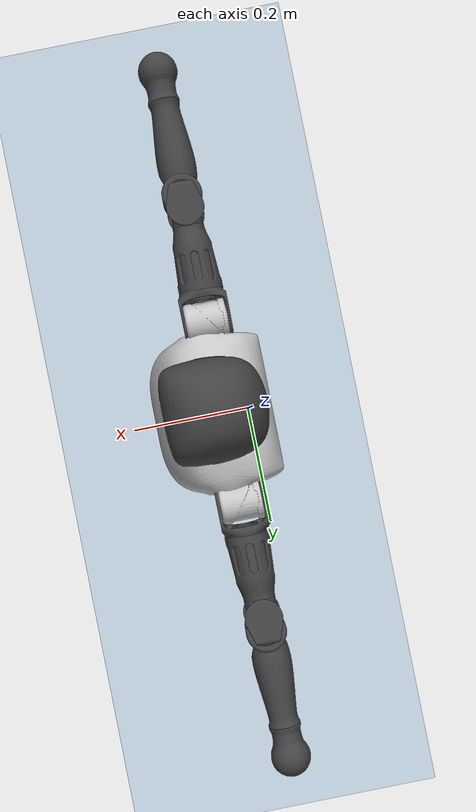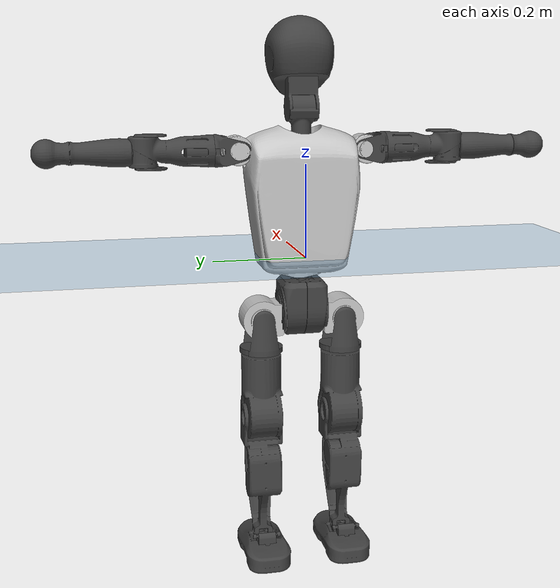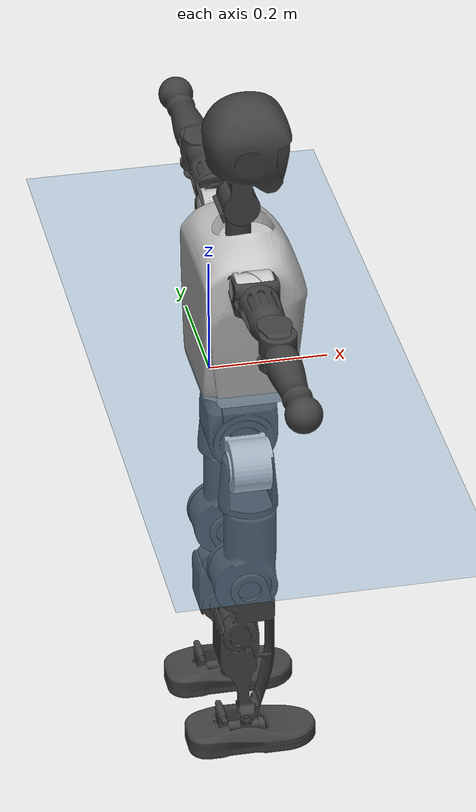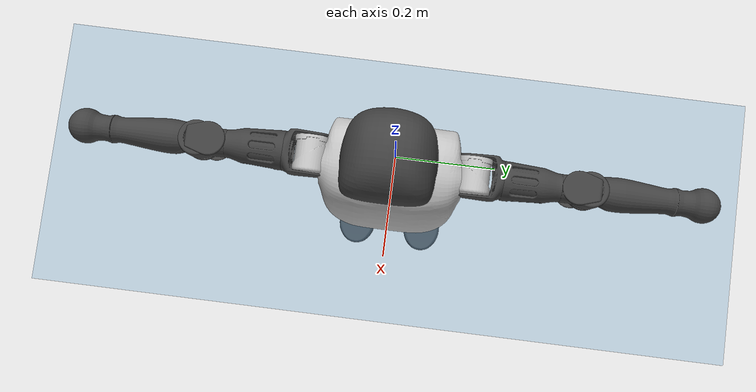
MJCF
<mujoco model="T1">
  <compiler angle="radian" assetdir="assets" balanceinertia="true" inertiafromgeom="false"/>

  <option timestep="0.005" density="1.2" viscosity="2e-05"/>

  <size nkey="1"/>

  <visual>
    <quality shadowsize="8192"/>
    <map shadowclip="0.5"/>
  </visual>

  <default>
    <default class="/">
      <joint armature="0.01" damping="0.01" frictionloss="0.1"/>
      <geom contype="0" conaffinity="0" group="1" solref="-1000 -80"/>
      <site size="0.01 0.005 0.005" group="5"/>
      <general forcelimited="true" biastype="affine" gainprm="25" biasprm="0 -25 -0.6"/>
      <default class="t1">
        <geom rgba="0.25 0.25 0.25 1"/>
        <default class="visual">
          <geom type="mesh" group="2"/>
        </default>
        <default class="collision">
          <geom group="3"/>
        </default>
        <default class="foot">
          <geom size="0.1115 0.05 0.015" type="box" condim="6" group="4" priority="1" solimp="0.015 1 0.015"/>
        </default>
        <default class="reward_collision_sphere">
          <geom group="5" rgba="1 0 0 1"/>
        </default>
      </default>
    </default>
  </default>

  <asset>
    <texture type="skybox" colorspace="auto" name="//unnamed_texture_0" builtin="gradient" rgb1="0.95 0.95 0.95" rgb2="0.95 0.95 0.95" width="100" height="600"/>
    <texture type="2d" colorspace="auto" name="texplane" builtin="checker" rgb1="0.345 0.575 0.748" rgb2="0.345 0.575 0.748" markrgb="1 1 1" width="512" height="512"/>
    <material name="MatPlane" class="/" texture="texplane" texuniform="true" texrepeat="2 2" specular="0.9"/>
    <mesh name="Trunk" class="/" file="Trunk.stl"/>
    <mesh name="H1" class="/" file="H1.stl"/>
    <mesh name="H2" class="/" file="H2.stl"/>
    <mesh name="AL1" class="/" file="AL1.stl"/>
    <mesh name="AL2" class="/" file="AL2.stl"/>
    <mesh name="AL3" class="/" file="AL3.stl"/>
    <mesh name="left_hand_link" class="/" file="left_hand_link.stl"/>
    <mesh name="AR1" class="/" file="AR1.stl"/>
    <mesh name="AR2" class="/" file="AR2.stl"/>
    <mesh name="AR3" class="/" file="AR3.stl"/>
    <mesh name="right_hand_link" class="/" file="right_hand_link.stl"/>
    <mesh name="Waist" class="/" file="Waist.stl"/>
    <mesh name="Hip_Pitch_Left" class="/" file="Hip_Pitch_Left.stl"/>
    <mesh name="Hip_Roll_Left" class="/" file="Hip_Roll_Left.stl"/>
    <mesh name="Hip_Yaw_Left" class="/" file="Hip_Yaw_Left.stl"/>
    <mesh name="Shank_Left" class="/" file="Shank_Left.stl"/>
    <mesh name="Ankle_Cross_Left" class="/" file="Ankle_Cross_Left.stl"/>
    <mesh name="left_foot_link" class="/" file="left_foot_link.stl"/>
    <mesh name="Hip_Pitch_Right" class="/" file="Hip_Pitch_Right.stl"/>
    <mesh name="Hip_Roll_Right" class="/" file="Hip_Roll_Right.stl"/>
    <mesh name="Hip_Yaw_Right" class="/" file="Hip_Yaw_Right.stl"/>
    <mesh name="Shank_Right" class="/" file="Shank_Right.stl"/>
    <mesh name="Ankle_Cross_Right" class="/" file="Ankle_Cross_Right.stl"/>
    <mesh name="right_foot_link" class="/" file="right_foot_link.stl"/>
  </asset>

  <worldbody>
    <geom name="floor" class="/" size="100 100 0.125" type="plane" group="0" material="MatPlane"/>
    <light name="toplight_shadow" class="/" pos="0 0 5" dir="0.0990148 0.0990148 -0.990148" type="directional" ambient="0.04 0.04 0.04" diffuse="0.55 0.55 0.55" specular="0.12 0.12 0.12"/>
    <light name="toplight_fill" class="/" pos="0 0 5" dir="0.0990148 0.0990148 -0.990148" type="directional" castshadow="false" ambient="0.04 0.04 0.04" diffuse="0.3 0.3 0.3" specular="0.08 0.08 0.08"/>
    <body name="trunk" childclass="t1" pos="0.0010016 -0.000595631 -0.000760649" quat="1 -4.36602e-05 0.000283851 -6.66623e-05">
      <inertial pos="0.0426617 0.000401135 0.108888" quat="0.99997 9.71065e-05 -0.00778375 -0.000448022" mass="8.16595" diaginertia="0.0267847 0.0361313 0.0682736"/>
      <joint name="//unnamed_joint_0" type="free" armature="0" damping="0" frictionloss="0"/>
      <geom name="//unnamed_geom_1" class="visual" rgba="0.76 0.76 0.76 1" mesh="Trunk"/>
      <geom name="//unnamed_geom_2" class="collision" size="0.067173 0.0895641 0.134346" pos="0.0470039 0 0.125368" type="box"/>
      <geom name="//unnamed_geom_3" class="reward_collision_sphere" size="0.102999" pos="0.0470039 0 0.104474"/>
      <geom name="//unnamed_geom_4" class="reward_collision_sphere" size="0.0134346" pos="0.0470039 0.0729969 0"/>
      <geom name="//unnamed_geom_5" class="reward_collision_sphere" size="0.0134346" pos="0.0470039 -0.0729969 0"/>
      <geom name="//unnamed_geom_6" class="reward_collision_sphere" size="0.0134346" pos="0.0470039 0.0918903 0.188052"/>
      <geom name="//unnamed_geom_7" class="reward_collision_sphere" size="0.0134346" pos="0.0470039 -0.0918903 0.188052"/>
      <site name="imu" pos="0.0017817 -0.00624783 -0.000284552" size="0.00895641"/>
      <camera name="track" pos="0 -1.71758 0" quat="0.707107 0.707107 0 0" mode="trackcom"/>
      <camera name="ego_camera" pos="0.0955747 0 0.438789" quat="-0.5 -0.5 0.5 0.5"/>
      <body name="H1" pos="0.047985 -0.000677565 0.253023" quat="1 -0.00037762 1.87918e-05 0.000222547">
        <inertial pos="-0.00203117 -0.00147798 0.0594413" quat="0.762457 -0.0231882 0.000846878 0.646622" mass="0.316695" diaginertia="7.1289e-05 0.000104083 0.000187438"/>
        <joint name="AAHead_yaw" pos="0 0 0" axis="-0.00259432 0.00579973 0.99998" stiffness="0.00246988" range="-1.56455 1.57689" armature="0.0086515" damping="0.00847119" frictionloss="0.0893916"/>
        <geom name="//unnamed_geom_8" class="visual" mesh="H1"/>
        <body name="H2" pos="0.000129433 -0.000436811 0.0638942" quat="1 -0.000203332 0.00017649 -0.000123914">
          <inertial pos="0.00560124 -0.00111528 0.102946" quat="0.988458 0.106166 -0.0745503 -0.0782473" mass="0.451371" diaginertia="0.000598536 0.000871578 0.00214261"/>
          <joint name="Head_pitch" pos="0 0 0" axis="0.0026489 -0.999995 -0.00144072" range="-1.22726 0.334003" armature="0.00900412" damping="0.00431443" frictionloss="0.0939757"/>
          <geom name="//unnamed_geom_9" class="visual" mesh="H2"/>
          <geom name="//unnamed_geom_10" class="collision" size="0.0716512" pos="0.00783399 0 0.114921"/>
          <geom name="//unnamed_geom_11" class="reward_collision_sphere" size="0.0806077" pos="0.015668 0 0.104474"/>
        </body>
      </body>
      <body name="AL1" pos="0.0469277 0.0925791 0.228969" quat="1 -7.23378e-05 0.000294675 -0.00021343">
        <inertial pos="-0.000203091 0.0379283 -0.00184526" quat="0.502411 0.498953 -0.508213 0.490254" mass="0.391593" diaginertia="0.000415503 0.000616955 0.00037305"/>
        <joint name="Left_Shoulder_Pitch" pos="0 0 0" axis="0.00689592 0.999973 0.00267626" range="-3.30494 1.2399" armature="0.00917417" damping="0.00577754" frictionloss="0.0916067"/>
        <geom name="//unnamed_geom_12" class="visual" rgba="0.76 0.76 0.76 1" mesh="AL1"/>
        <body name="AL2" pos="0.000118048 0.0407827 -0.000468783" quat="0.999999 0.000951629 0.000291094 -0.000121042">
          <inertial pos="0.00351779 0.0304258 -0.000436014" quat="0.487996 0.511851 -0.487922 0.511664" mass="0.114278" diaginertia="0.000119033 0.000162759 0.000218467"/>
          <joint name="Left_Shoulder_Roll" pos="0 0 0" axis="-0.999969 -0.00385099 -0.00681137" range="-1.54485 1.75154" armature="0.00943121" damping="0" frictionloss="0.0954404"/>
          <geom name="//unnamed_geom_13" class="visual" mesh="AL2"/>
          <body name="AL3" pos="0.00102851 0.0543718 -0.000226393" quat="1 0.00024297 -0.000589347 -0.000170104">
            <inertial pos="-0.00058645 0.0724396 0.000777242" quat="0.706831 0.707376 -0.00146467 0.00284541" mass="0.760043" diaginertia="0.00382086 0.00611295 0.000761996"/>
            <joint name="Left_Elbow_Pitch" pos="0 0 0" axis="-0.00022617 -0.999997 0.00235422" range="-2.23158 2.23193" armature="0.00963832" damping="0" frictionloss="0.0909514"/>
            <geom name="//unnamed_geom_14" class="visual" mesh="AL3"/>
            <geom name="//unnamed_geom_15" class="collision" size="0.0268692 0.067173" pos="0 0.0429394 0" quat="0.707105 0.707108 0 0" type="cylinder"/>
            <geom name="//unnamed_geom_16" class="reward_collision_sphere" size="0.0322431"/>
            <body name="left_hand_link" pos="-0.000178405 0.126327 -0.000763242" quat="1 -7.07479e-06 -4.26841e-05 -0.000106129">
              <inertial pos="1.40125e-05 0.0936799 -0.000173337" quat="0.706296 0.707916 -0.000613576 0.000835468" mass="0.23338" diaginertia="0.00238297 0.00378778 0.00026719"/>
              <joint name="Left_Elbow_Yaw" pos="0 0 0" axis="0.00131911 0.000604388 0.999999" range="-2.44615 -0.00487303" armature="0.00932603" damping="0.0108228" frictionloss="0.0868949"/>
              <geom name="//unnamed_geom_17" class="visual" mesh="left_hand_link"/>
              <geom name="//unnamed_geom_18" class="collision" size="0.0268692 0.0783686" pos="0 0.111642 0" quat="0.707105 0.707108 0 0" type="cylinder"/>
              <geom name="//unnamed_geom_19" class="reward_collision_sphere" size="0.044782"/>
              <geom name="//unnamed_geom_20" class="reward_collision_sphere" size="0.0313474" pos="0 0.0944666 0"/>
              <geom name="//unnamed_geom_21" class="reward_collision_sphere" size="0.0313474" pos="0 0.184639 0"/>
            </body>
          </body>
        </body>
      </body>
      <body name="AR1" pos="0.0445317 -0.091873 0.228504" quat="1 -0.00020678 0.000542906 -4.62573e-05">
        <inertial pos="-0.00111969 -0.0401984 0.0013593" quat="0.504008 0.495459 -0.504435 0.496026" mass="0.380221" diaginertia="0.000400283 0.000599266 0.000365005"/>
        <joint name="Right_Shoulder_Pitch" pos="0 0 0" axis="-0.000183944 -1 -4.4223e-05" range="-1.21308 3.30904" armature="0.00921269" damping="0.00199904" frictionloss="0.0889325"/>
        <geom name="//unnamed_geom_22" class="visual" rgba="0.76 0.76 0.76 1" mesh="AR1"/>
        <body name="AR2" pos="-0.000824958 -0.0387604 0.000667124" quat="1 -6.34741e-05 -9.86258e-06 -1.77017e-05">
          <inertial pos="0.00260542 -0.0325536 -0.00122407" quat="0.510419 0.489967 -0.513105 0.48593" mass="0.112887" diaginertia="0.000117517 0.00015675 0.000215358"/>
          <joint name="Right_Shoulder_Roll" pos="0 0 0" axis="-0.999968 0.000350963 -0.00801016" stiffness="0.00627118" range="-1.72622 1.59606" armature="0.00901858" damping="0.000888027" frictionloss="0.0895932"/>
          <geom name="//unnamed_geom_23" class="visual" mesh="AR2"/>
          <body name="AR3" pos="-0.00032745 -0.0527903 0.000661853" quat="1 -3.89502e-05 0.000215492 0.000131886">
            <inertial pos="-0.00137637 -0.0726298 -0.000332599" quat="0.707839 0.706373 -0.000229852 -0.000124265" mass="0.727637" diaginertia="0.00374571 0.00591337 0.000757095"/>
            <joint name="Right_Elbow_Pitch" pos="0 0 0" axis="0.00523272 0.999986 0.00121342" range="-2.2771 2.2679" armature="0.00962881" damping="0.0086069" frictionloss="0.0833329"/>
            <geom name="//unnamed_geom_24" class="visual" mesh="AR3"/>
            <geom name="//unnamed_geom_25" class="collision" size="0.0268692 0.067173" pos="0 -0.0429394 0" quat="0.707105 0.707108 0 0" type="cylinder"/>
            <geom name="//unnamed_geom_26" class="reward_collision_sphere" size="0.0322431"/>
            <body name="right_hand_link" pos="-0.000854193 -0.125732 -0.000410519" quat="1 8.7961e-06 -3.76796e-05 1.31261e-05">
              <inertial pos="-0.000264098 -0.0943396 -0.00103196" quat="0.703609 0.710537 0.00165072 0.00827578" mass="0.241849" diaginertia="0.00236883 0.00380139 0.000266096"/>
              <joint name="Right_Elbow_Yaw" pos="0 0 0" axis="0.000707493 -0.00377569 0.999993" range="-0.0295443 2.47525" armature="0.00882948" damping="0.0120481" frictionloss="0.086598"/>
              <geom name="//unnamed_geom_27" class="visual" mesh="right_hand_link"/>
              <geom name="//unnamed_geom_28" class="collision" size="0.0268692 0.0783686" pos="0 -0.111642 0" quat="0.707105 0.707108 0 0" type="cylinder"/>
              <geom name="//unnamed_geom_29" class="reward_collision_sphere" size="0.044782"/>
              <geom name="//unnamed_geom_30" class="reward_collision_sphere" size="0.0313474" pos="0 -0.0944666 0"/>
              <geom name="//unnamed_geom_31" class="reward_collision_sphere" size="0.0313474" pos="0 -0.184639 0"/>
            </body>
          </body>
        </body>
      </body>
      <body name="Waist" pos="0.0481381 -0.00120464 -0.120127" quat="1 0.000190536 -0.000387228 4.88988e-06">
        <inertial pos="0.0010066 -0.00101823 0.00695161" quat="0.983514 0.00388124 -0.180744 0.00416585" mass="1.86325" diaginertia="0.0015713 0.00245948 0.00589089"/>
        <joint name="Waist" pos="0 0 0" axis="-0.00442632 -0.0040175 0.999982" range="-1.57242 1.56254" armature="0.00848963" damping="0.0175573" frictionloss="0.0855852"/>
        <geom name="//unnamed_geom_32" class="visual" mesh="Waist"/>
        <body name="Hip_Pitch_Left" pos="0.000362879 0.0920366 0.00105507" quat="1 0.000281625 2.86611e-05 -9.79404e-05">
          <inertial pos="0.00260276 -0.00743228 -0.0204592" quat="0.975457 0.219366 0.0157489 0.0106677" mass="0.732331" diaginertia="0.000533935 0.000678778 0.00153967"/>
          <joint name="Left_Hip_Pitch" pos="0 0 0" axis="-0.000150315 0.999994 0.00357877" range="-1.80146 1.59861" armature="0.00872199" damping="0.00103789" frictionloss="0.0888061"/>
          <geom name="//unnamed_geom_33" class="visual" rgba="0.76 0.76 0.76 1" mesh="Hip_Pitch_Left"/>
          <body name="Hip_Roll_Left" pos="0.00104983 -0.000851176 -0.0199054" quat="1 0.000165348 7.03215e-06 -2.5936e-05">
            <inertial pos="0.00138568 0.000779516 -0.0559016" quat="0.707006 -0.00606788 -0.00625589 0.707154" mass="0.266347" diaginertia="0.000511854 0.000685287 0.000624045"/>
            <joint name="Left_Hip_Roll" pos="0 0 0" axis="-0.999979 0.00370184 -0.00522671" range="-1.56071 0.182507" armature="0.00907759" damping="0.00971633" frictionloss="0.0893597"/>
            <geom name="//unnamed_geom_34" class="visual" mesh="Hip_Roll_Left"/>
            <geom name="//unnamed_geom_35" class="reward_collision_sphere" size="0.0492602"/>
            <body name="Hip_Yaw_Left" pos="0.00160552 3.59551e-05 -0.0857933" quat="1 -4.33889e-05 -5.90074e-05 -1.09766e-05">
              <inertial pos="-0.00545335 -0.00037935 -0.0938496" quat="0.693326 -0.0351191 -0.0386187 0.718731" mass="1.56233" diaginertia="0.00768713 0.0119856 0.00330057"/>
              <joint name="Left_Hip_Yaw" pos="0 0 0" axis="0.0024637 0.00375692 -0.99999" range="-1.02476 0.997742" armature="0.00879006" damping="0.004457" frictionloss="0.0880767"/>
              <geom name="//unnamed_geom_36" class="visual" mesh="Hip_Yaw_Left"/>
              <geom name="//unnamed_geom_37" class="collision" size="0.044782 0.0716512" type="cylinder"/>
              <body name="Shank_Left" pos="-0.0102517 0.00124531 -0.141652" quat="1 0.00019774 -0.000180388 0.00014899">
                <inertial pos="-0.00490929 -0.00131057 -0.130022" quat="0.997617 0.00234052 -0.0257031 0.0639909" mass="1.23966" diaginertia="0.0104641 0.0161443 0.00236269"/>
                <joint name="Left_Knee_Pitch" pos="0 0 0" axis="-5.61901e-05 1 -0.00055621" range="-0.0175698 2.33676" armature="0.00857776" damping="0.00559422" frictionloss="0.0994737"/>
                <geom name="//unnamed_geom_38" class="visual" mesh="Shank_Left"/>
                <geom name="//unnamed_geom_39" class="collision" size="0.044782 0.067173" pos="0 0 -0.125368" type="cylinder"/>
                <geom name="//unnamed_geom_40" class="reward_collision_sphere" size="0.0582166"/>
                <body name="Ankle_Cross_Left" pos="-0.00124121 -0.00073367 -0.292788" quat="1 -1.92582e-05 2.95118e-05 -7.3802e-06">
                  <inertial pos="-0.00290302 -0.000112368 -0.00895778" quat="0.442594 0.551523 0.550907 0.443208" mass="0.0510928" diaginertia="8.3799e-06 1.13866e-05 1.36514e-05"/>
                  <joint name="Left_Ankle_Pitch" pos="0 0 0" axis="-0.0045114 0.999947 -0.00922765" range="-0.850349 0.358538" armature="0.00887328" damping="0.0103909" frictionloss="0.0936419"/>
                  <geom name="//unnamed_geom_41" class="visual" mesh="Ankle_Cross_Left"/>
                  <body name="left_foot_link" pos="-0.00108741 -0.000692565 -0.012523" quat="0.999999 -0.000167013 0.000721202 -0.000686035">
                    <inertial pos="0.00129838 -0.000222214 -0.00849713" quat="-0.000366426 0.61883 -0.00234811 0.785521" mass="0.483482" diaginertia="0.0007878 0.00110244 0.00267671"/>
                    <joint name="Left_Ankle_Roll" pos="0 0 0" axis="-0.999998 -0.00116408 -0.00142377" stiffness="0.000819825" range="-0.437134 0.45463" armature="0.00900828" damping="0.00530841" frictionloss="0.0851728"/>
                    <geom name="//unnamed_geom_42" class="visual" mesh="left_foot_link"/>
                    <geom name="left_foot" class="foot" size="0.104036 0.0439703 0.0126189" pos="0.00783399 0 -0.015671"/>
                    <geom name="//unnamed_geom_44" class="reward_collision_sphere" size="0.0465733" pos="0.00783399 0 -0.015671"/>
                    <geom name="//unnamed_geom_45" class="reward_collision_sphere" size="0.0268692" pos="0.0744229 -0.0197521 -0.015671"/>
                    <geom name="//unnamed_geom_46" class="reward_collision_sphere" size="0.0268692" pos="-0.0548379 -0.0197521 -0.015671"/>
                    <site name="left_foot" class="foot" pos="0.00783399 0 -0.015671" size="0.00895641"/>
                  </body>
                </body>
              </body>
            </body>
          </body>
        </body>
        <body name="Hip_Pitch_Right" pos="-0.00104347 -0.0903944 0.000332365" quat="1 0.000245085 -9.62611e-05 -8.65103e-05">
          <inertial pos="0.00105726 0.00728607 -0.0179146" quat="0.973153 -0.229661 0.0144447 -0.00462067" mass="0.739956" diaginertia="0.000534858 0.000684458 0.00154869"/>
          <joint name="Right_Hip_Pitch" pos="0 0 0" axis="0.00112138 -0.999995 -0.00290535" stiffness="0.00198518" range="-1.56933 1.78786" armature="0.00876392" damping="0.00479486" frictionloss="0.0901501"/>
          <geom name="//unnamed_geom_47" class="visual" rgba="0.76 0.76 0.76 1" mesh="Hip_Pitch_Right"/>
          <body name="Hip_Roll_Right" pos="0.000788196 0.000231697 -0.0199364" quat="1 -3.92212e-06 -5.83151e-06 7.11167e-06">
            <inertial pos="0.000207744 0.000595179 -0.0565768" quat="0.70708 -0.00215422 -0.00742226 0.707092" mass="0.280483" diaginertia="0.000518035 0.000708706 0.000649096"/>
            <joint name="Right_Hip_Roll" pos="0 0 0" axis="-0.999999 0.00141633 -9.68975e-05" range="-0.192531 1.57066" armature="0.00857643" damping="0.00854356" frictionloss="0.0931061"/>
            <geom name="//unnamed_geom_48" class="visual" mesh="Hip_Roll_Right"/>
            <geom name="//unnamed_geom_49" class="reward_collision_sphere" size="0.0492602"/>
            <body name="Hip_Yaw_Right" pos="0.000668604 -0.000465492 -0.0858514" quat="1 0.000121973 0.000202033 -7.34859e-05">
              <inertial pos="-0.00508872 -0.00151877 -0.0915994" quat="0.714308 -0.0316628 -0.0336142 0.698306" mass="1.59613" diaginertia="0.00766644 0.0120882 0.00323971"/>
              <joint name="Right_Hip_Yaw" pos="0 0 0" axis="0.00288748 -0.00370596 -0.999989" stiffness="0.00629624" range="-1.00624 1.00882" armature="0.00812702" damping="0.00766102" frictionloss="0.0893829"/>
              <geom name="//unnamed_geom_50" class="visual" mesh="Hip_Yaw_Right"/>
              <geom name="//unnamed_geom_51" class="collision" size="0.044782 0.0716512" type="cylinder"/>
              <body name="Shank_Right" pos="-0.00911689 -0.000846374 -0.139248" quat="1 7.97467e-05 6.49748e-05 -2.34384e-05">
                <inertial pos="-0.00303634 0.00194031 -0.129049" quat="0.999251 -0.000940577 -0.0243742 -0.0300529" mass="1.31611" diaginertia="0.0109105 0.0169163 0.00252481"/>
                <joint name="Right_Knee_Pitch" pos="0 0 0" axis="0.00106629 -0.999999 -0.00119498" range="-2.34168 0.00167344" armature="0.0086964" damping="0.010013" frictionloss="0.0855209"/>
                <geom name="//unnamed_geom_52" class="visual" mesh="Shank_Right"/>
                <geom name="//unnamed_geom_53" class="collision" size="0.044782 0.067173" pos="0 0 -0.125368" type="cylinder"/>
                <geom name="//unnamed_geom_54" class="reward_collision_sphere" size="0.0582166"/>
                <body name="Ankle_Cross_Right" pos="-8.35201e-05 -0.0015326 -0.292818" quat="1 -4.84317e-05 -8.60623e-05 0.000208874">
                  <inertial pos="-0.00372521 -0.000271654 -0.00850551" quat="0.442321 0.55101 0.553931 0.440341" mass="0.0522236" diaginertia="8.58599e-06 1.1969e-05 1.42279e-05"/>
                  <joint name="Right_Ankle_Pitch" pos="0 0 0" axis="0.00582495 -0.999933 0.0100185" range="-0.331067 0.869305" armature="0.00891645" damping="0.00722452" frictionloss="0.0860127"/>
                  <geom name="//unnamed_geom_55" class="visual" mesh="Ankle_Cross_Right"/>
                  <body name="right_foot_link" pos="1.74694e-05 -0.00168756 -0.012163" quat="1 1.19615e-06 8.75985e-06 2.73821e-05">
                    <inertial pos="0.00180312 9.8364e-05 -0.0097744" quat="0.000549666 0.62126 -0.00166761 0.783602" mass="0.495759" diaginertia="0.000818024 0.00111106 0.00275499"/>
                    <joint name="Right_Ankle_Roll" pos="0 0 0" axis="-0.999982 -0.00574099 0.00193908" range="-0.437134 0.458785" armature="0.00855346" damping="0.00551738" frictionloss="0.0825671"/>
                    <geom name="//unnamed_geom_56" class="visual" mesh="right_foot_link"/>
                    <geom name="right_foot" class="foot" size="0.0987368 0.0436933 0.0136661" pos="0.00783399 0 -0.015671"/>
                    <geom name="//unnamed_geom_58" class="reward_collision_sphere" size="0.0358256"/>
                    <geom name="//unnamed_geom_59" class="reward_collision_sphere" size="0.0268692" pos="0.00783399 0 -0.015671"/>
                    <geom name="//unnamed_geom_60" class="reward_collision_sphere" size="0.0268692" pos="0.0744229 0.0197521 -0.015671"/>
                    <geom name="//unnamed_geom_61" class="reward_collision_sphere" size="0.0268692" pos="-0.0548379 0.0197521 -0.015671"/>
                    <site name="right_foot" class="foot" pos="0.00783399 0 -0.015671" size="0.00895641"/>
                  </body>
                </body>
              </body>
            </body>
          </body>
        </body>
      </body>
    </body>
  </worldbody>

  <contact>
    <pair class="/" geom1="floor" geom2="left_foot" name="//unnamed_contact_0"/>
    <pair class="/" geom1="floor" geom2="right_foot" name="//unnamed_contact_1"/>
  </contact>

  <actuator>
    <general name="AAHead_yaw" class="/" joint="AAHead_yaw" forcerange="-6.00275 6.00275" gainprm="22.7483" biasprm="0 -22.7483 -0.524169"/>
    <general name="Head_pitch" class="/" joint="Head_pitch" forcerange="-6.03696 6.03696" gainprm="22.7483" biasprm="0 -22.7483 -0.524169"/>
    <general name="Left_Shoulder_Pitch" class="/" joint="Left_Shoulder_Pitch" forcerange="-15.8797 15.8797" gainprm="22.7483" biasprm="0 -22.7483 -0.524169"/>
    <general name="Left_Shoulder_Roll" class="/" joint="Left_Shoulder_Roll" forcerange="-15.4734 15.4734" gainprm="22.7483" biasprm="0 -22.7483 -0.524169"/>
    <general name="Left_Elbow_Pitch" class="/" joint="Left_Elbow_Pitch" forcerange="-16.4807 16.4807" gainprm="22.7483" biasprm="0 -22.7483 -0.524169"/>
    <general name="Left_Elbow_Yaw" class="/" joint="Left_Elbow_Yaw" forcerange="-17.4306 17.4306" gainprm="22.7483" biasprm="0 -22.7483 -0.524169"/>
    <general name="Right_Shoulder_Pitch" class="/" joint="Right_Shoulder_Pitch" forcerange="-16.152 16.152" gainprm="22.7483" biasprm="0 -22.7483 -0.524169"/>
    <general name="Right_Shoulder_Roll" class="/" joint="Right_Shoulder_Roll" forcerange="-16.4116 16.4116" gainprm="22.7483" biasprm="0 -22.7483 -0.524169"/>
    <general name="Right_Elbow_Pitch" class="/" joint="Right_Elbow_Pitch" forcerange="-15.925 15.925" gainprm="22.7483" biasprm="0 -22.7483 -0.524169"/>
    <general name="Right_Elbow_Yaw" class="/" joint="Right_Elbow_Yaw" forcerange="-15.8032 15.8032" gainprm="22.7483" biasprm="0 -22.7483 -0.524169"/>
    <general name="Waist" class="/" joint="Waist" forcerange="-26.9837 26.9837" gainprm="22.7483" biasprm="0 -22.7483 -0.524169"/>
    <general name="Left_Hip_Pitch" class="/" joint="Left_Hip_Pitch" forcerange="-39.4818 39.4818" gainprm="22.7483" biasprm="0 -22.7483 -0.524169"/>
    <general name="Left_Hip_Roll" class="/" joint="Left_Hip_Roll" forcerange="-26.4173 26.4173" gainprm="22.7483" biasprm="0 -22.7483 -0.524169"/>
    <general name="Left_Hip_Yaw" class="/" joint="Left_Hip_Yaw" forcerange="-26.0274 26.0274" gainprm="22.7483" biasprm="0 -22.7483 -0.524169"/>
    <general name="Left_Knee_Pitch" class="/" joint="Left_Knee_Pitch" forcerange="-53.377 53.377" gainprm="22.7483" biasprm="0 -22.7483 -0.524169"/>
    <general name="Left_Ankle_Pitch" class="/" joint="Left_Ankle_Pitch" forcerange="-17.5069 17.5069" gainprm="22.7483" biasprm="0 -22.7483 -0.524169"/>
    <general name="Left_Ankle_Roll" class="/" joint="Left_Ankle_Roll" forcerange="-13.4195 13.4195" gainprm="22.7483" biasprm="0 -22.7483 -0.524169"/>
    <general name="Right_Hip_Pitch" class="/" joint="Right_Hip_Pitch" forcerange="-39.9147 39.9147" gainprm="22.7483" biasprm="0 -22.7483 -0.524169"/>
    <general name="Right_Hip_Roll" class="/" joint="Right_Hip_Roll" forcerange="-26.7161 26.7161" gainprm="22.7483" biasprm="0 -22.7483 -0.524169"/>
    <general name="Right_Hip_Yaw" class="/" joint="Right_Hip_Yaw" forcerange="-26.9677 26.9677" gainprm="22.7483" biasprm="0 -22.7483 -0.524169"/>
    <general name="Right_Knee_Pitch" class="/" joint="Right_Knee_Pitch" forcerange="-55.3155 55.3155" gainprm="22.7483" biasprm="0 -22.7483 -0.524169"/>
    <general name="Right_Ankle_Pitch" class="/" joint="Right_Ankle_Pitch" forcerange="-17.6648 17.6648" gainprm="22.7483" biasprm="0 -22.7483 -0.524169"/>
    <general name="Right_Ankle_Roll" class="/" joint="Right_Ankle_Roll" forcerange="-13.1826 13.1826" gainprm="22.7483" biasprm="0 -22.7483 -0.524169"/>
  </actuator>

  <sensor>
    <gyro site="imu" name="imu_angular_velocity"/>
    <velocimeter site="imu" name="imu_linear_velocity"/>
    <framelinvel objtype="site" objname="left_foot" name="left_foot_global_linear_velocity"/>
    <framelinvel objtype="site" objname="right_foot" name="right_foot_global_linear_velocity"/>
  </sensor>

  <keyframe>
    <key name="home" qpos="0 0 0.6385 1 0 0 0 0 0 0 1.4 0 -0.4 0 -1.4 0 0.4 0 -0.4 0 0 0.8 -0.4 0 0.4 0 0 -0.8 0.4 0"/>
  </keyframe>
</mujoco>
